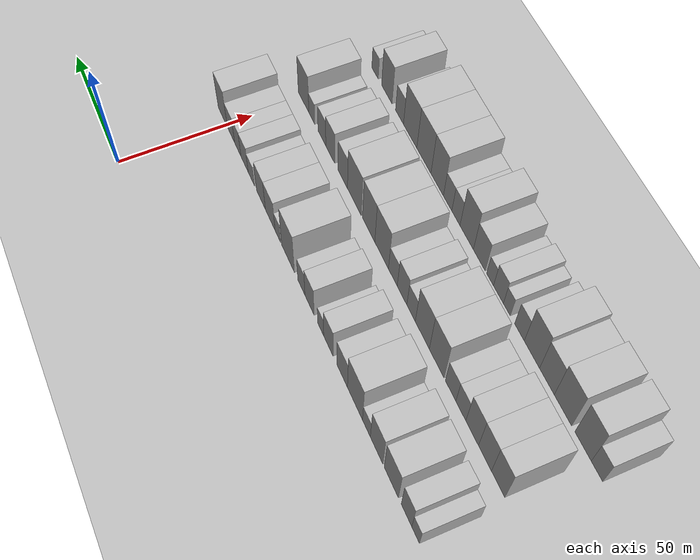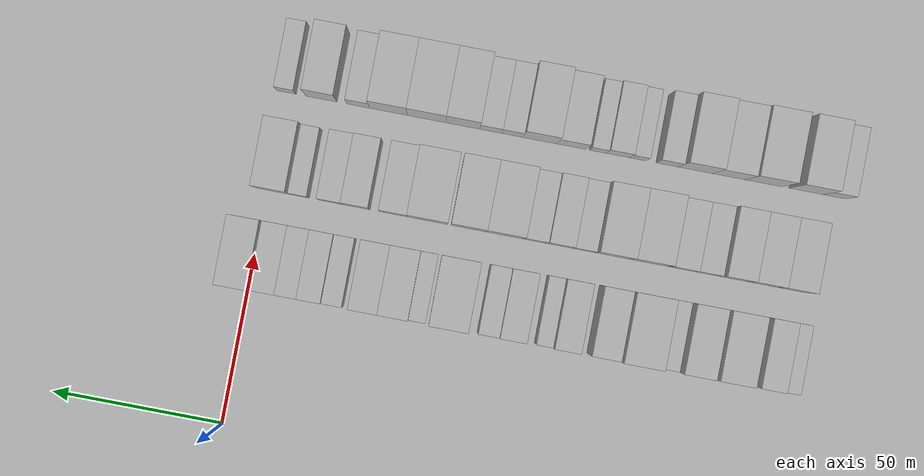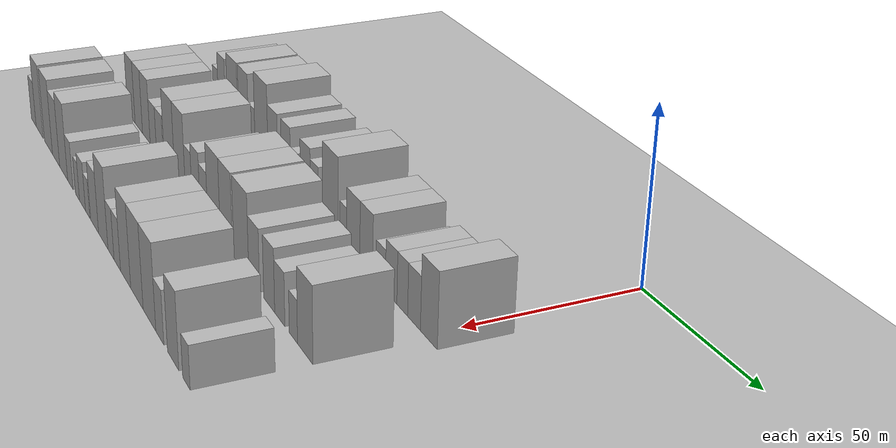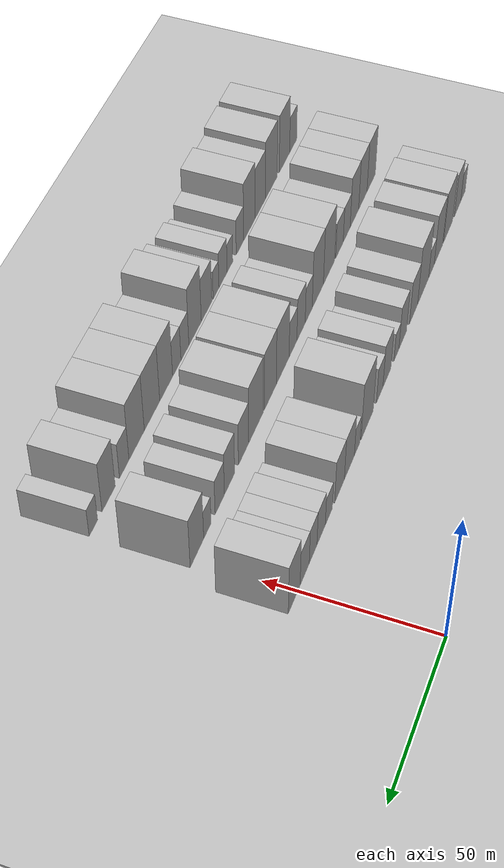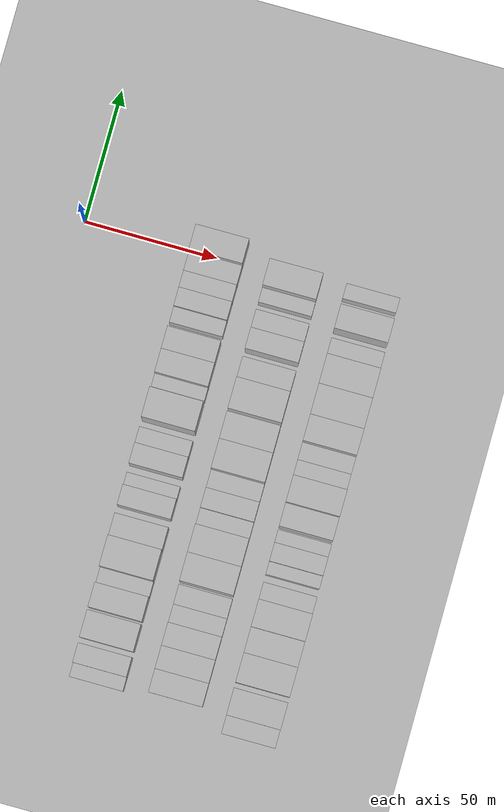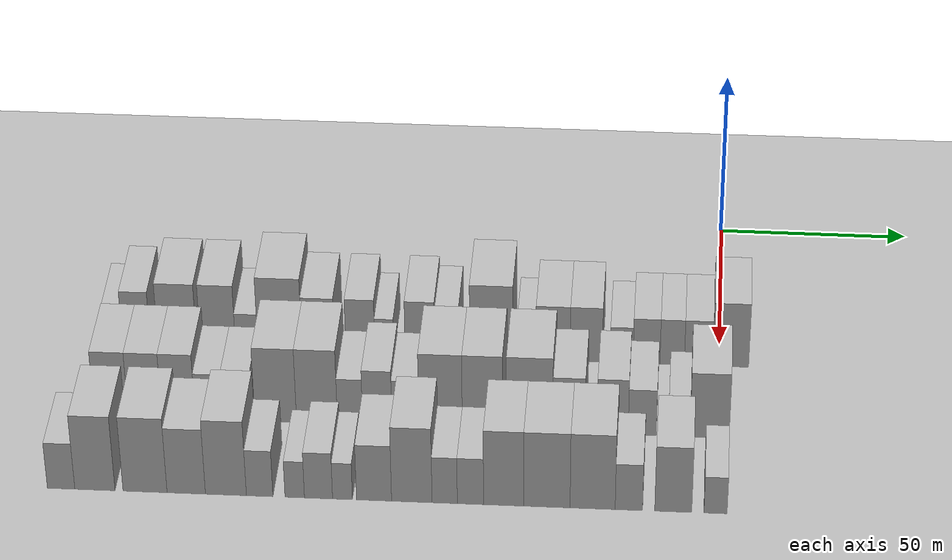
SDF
<sdf version="1.6">
 <world name="default">
  <include><name>ground_plane_1</name><uri>model://HANNAS_ground_plane</uri></include>
  <include>
   <name>ground_plane_2</name>
   <uri>model://HANNAS_ground_plane</uri>
   <pose>100 0 0  0 0 0</pose>
  </include>
  <model name="building_20">
   <static>1</static>
   <pose>50.0000 -158.1950 0 0.000000 0.000000 0.000000</pose>
   <link name="link">
    <pose>0 0 6.00 0 0 0</pose>
    <collision name="collision"><geometry><box><size>20.0000 5.2070 12.0000</size></box></geometry></collision>
    <visual name="visual">
     <cast_shadows>0</cast_shadows>
     <geometry><box><size>20.0000 5.2070 12.0000</size></box></geometry>
     <material>
      <script>
       <uri>model://HANNAS_wall/materials/scripts</uri>
       <uri>model://HANNAS_wall/materials/textures</uri>
       <name>vrc/HANNAS_wall</name>
      </script>
     </material>
    </visual>
   </link>
  </model>
  <model name="building_21">
   <static>1</static>
   <pose>50.0000 -151.9357 0 0.000000 0.000000 0.000000</pose>
   <link name="link">
    <pose>0 0 9.00 0 0 0</pose>
    <collision name="collision"><geometry><box><size>20.0000 7.3116 18.0000</size></box></geometry></collision>
    <visual name="visual">
     <cast_shadows>0</cast_shadows>
     <geometry><box><size>20.0000 7.3116 18.0000</size></box></geometry>
     <material>
      <script>
       <uri>model://HANNAS_wall/materials/scripts</uri>
       <uri>model://HANNAS_wall/materials/textures</uri>
       <name>vrc/HANNAS_wall</name>
      </script>
     </material>
    </visual>
   </link>
  </model>
  <model name="building_22">
   <static>1</static>
   <pose>50.0000 -141.1871 0 0.000000 0.000000 0.000000</pose>
   <link name="link">
    <pose>0 0 10.50 0 0 0</pose>
    <collision name="collision"><geometry><box><size>20.0000 10.1855 21.0000</size></box></geometry></collision>
    <visual name="visual">
     <cast_shadows>0</cast_shadows>
     <geometry><box><size>20.0000 10.1855 21.0000</size></box></geometry>
     <material>
      <script>
       <uri>model://HANNAS_wall/materials/scripts</uri>
       <uri>model://HANNAS_wall/materials/textures</uri>
       <name>vrc/HANNAS_wall</name>
      </script>
     </material>
    </visual>
   </link>
  </model>
  <model name="building_23">
   <static>1</static>
   <pose>50.0000 -130.5088 0 0.000000 0.000000 0.000000</pose>
   <link name="link">
    <pose>0 0 10.50 0 0 0</pose>
    <collision name="collision"><geometry><box><size>20.0000 9.1711 21.0000</size></box></geometry></collision>
    <visual name="visual">
     <cast_shadows>0</cast_shadows>
     <geometry><box><size>20.0000 9.1711 21.0000</size></box></geometry>
     <material>
      <script>
       <uri>model://HANNAS_wall/materials/scripts</uri>
       <uri>model://HANNAS_wall/materials/textures</uri>
       <name>vrc/HANNAS_wall</name>
      </script>
     </material>
    </visual>
   </link>
  </model>
  <model name="building_24">
   <static>1</static>
   <pose>50.0000 -122.9851 0 0.000000 0.000000 0.000000</pose>
   <link name="link">
    <pose>0 0 6.00 0 0 0</pose>
    <collision name="collision"><geometry><box><size>20.0000 5.8763 12.0000</size></box></geometry></collision>
    <visual name="visual">
     <cast_shadows>0</cast_shadows>
     <geometry><box><size>20.0000 5.8763 12.0000</size></box></geometry>
     <material>
      <script>
       <uri>model://HANNAS_wall/materials/scripts</uri>
       <uri>model://HANNAS_wall/materials/textures</uri>
       <name>vrc/HANNAS_wall</name>
      </script>
     </material>
    </visual>
   </link>
  </model>
  <model name="building_25">
   <static>1</static>
   <pose>50.0000 -114.2810 0 0.000000 0.000000 0.000000</pose>
   <link name="link">
    <pose>0 0 12.00 0 0 0</pose>
    <collision name="collision"><geometry><box><size>20.0000 11.5320 24.0000</size></box></geometry></collision>
    <visual name="visual">
     <cast_shadows>0</cast_shadows>
     <geometry><box><size>20.0000 11.5320 24.0000</size></box></geometry>
     <material>
      <script>
       <uri>model://HANNAS_wall/materials/scripts</uri>
       <uri>model://HANNAS_wall/materials/textures</uri>
       <name>vrc/HANNAS_wall</name>
      </script>
     </material>
    </visual>
   </link>
  </model>
  <model name="building_26">
   <static>1</static>
   <pose>50.0000 -104.2789 0 0.000000 0.000000 0.000000</pose>
   <link name="link">
    <pose>0 0 9.00 0 0 0</pose>
    <collision name="collision"><geometry><box><size>20.0000 8.4722 18.0000</size></box></geometry></collision>
    <visual name="visual">
     <cast_shadows>0</cast_shadows>
     <geometry><box><size>20.0000 8.4722 18.0000</size></box></geometry>
     <material>
      <script>
       <uri>model://HANNAS_wall/materials/scripts</uri>
       <uri>model://HANNAS_wall/materials/textures</uri>
       <name>vrc/HANNAS_wall</name>
      </script>
     </material>
    </visual>
   </link>
  </model>
  <model name="building_27">
   <static>1</static>
   <pose>50.0000 -93.2435 0 0.000000 0.000000 0.000000</pose>
   <link name="link">
    <pose>0 0 9.00 0 0 0</pose>
    <collision name="collision"><geometry><box><size>20.0000 7.5985 18.0000</size></box></geometry></collision>
    <visual name="visual">
     <cast_shadows>0</cast_shadows>
     <geometry><box><size>20.0000 7.5985 18.0000</size></box></geometry>
     <material>
      <script>
       <uri>model://HANNAS_wall/materials/scripts</uri>
       <uri>model://HANNAS_wall/materials/textures</uri>
       <name>vrc/HANNAS_wall</name>
      </script>
     </material>
    </visual>
   </link>
  </model>
  <model name="building_28">
   <static>1</static>
   <pose>50.0000 -86.9962 0 0.000000 0.000000 0.000000</pose>
   <link name="link">
    <pose>0 0 6.00 0 0 0</pose>
    <collision name="collision"><geometry><box><size>20.0000 4.8962 12.0000</size></box></geometry></collision>
    <visual name="visual">
     <cast_shadows>0</cast_shadows>
     <geometry><box><size>20.0000 4.8962 12.0000</size></box></geometry>
     <material>
      <script>
       <uri>model://HANNAS_wall/materials/scripts</uri>
       <uri>model://HANNAS_wall/materials/textures</uri>
       <name>vrc/HANNAS_wall</name>
      </script>
     </material>
    </visual>
   </link>
  </model>
  <model name="building_29">
   <static>1</static>
   <pose>50.0000 -77.6888 0 0.000000 0.000000 0.000000</pose>
   <link name="link">
    <pose>0 0 9.00 0 0 0</pose>
    <collision name="collision"><geometry><box><size>20.0000 7.7185 18.0000</size></box></geometry></collision>
    <visual name="visual">
     <cast_shadows>0</cast_shadows>
     <geometry><box><size>20.0000 7.7185 18.0000</size></box></geometry>
     <material>
      <script>
       <uri>model://HANNAS_wall/materials/scripts</uri>
       <uri>model://HANNAS_wall/materials/textures</uri>
       <name>vrc/HANNAS_wall</name>
      </script>
     </material>
    </visual>
   </link>
  </model>
  <model name="building_30">
   <static>1</static>
   <pose>50.0000 -70.7583 0 0.000000 0.000000 0.000000</pose>
   <link name="link">
    <pose>0 0 7.50 0 0 0</pose>
    <collision name="collision"><geometry><box><size>20.0000 6.1424 15.0000</size></box></geometry></collision>
    <visual name="visual">
     <cast_shadows>0</cast_shadows>
     <geometry><box><size>20.0000 6.1424 15.0000</size></box></geometry>
     <material>
      <script>
       <uri>model://HANNAS_wall/materials/scripts</uri>
       <uri>model://HANNAS_wall/materials/textures</uri>
       <name>vrc/HANNAS_wall</name>
      </script>
     </material>
    </visual>
   </link>
  </model>
  <model name="building_31">
   <static>1</static>
   <pose>50.0000 -59.0798 0 0.000000 0.000000 0.000000</pose>
   <link name="link">
    <pose>0 0 12.00 0 0 0</pose>
    <collision name="collision"><geometry><box><size>20.0000 11.2145 24.0000</size></box></geometry></collision>
    <visual name="visual">
     <cast_shadows>0</cast_shadows>
     <geometry><box><size>20.0000 11.2145 24.0000</size></box></geometry>
     <material>
      <script>
       <uri>model://HANNAS_wall/materials/scripts</uri>
       <uri>model://HANNAS_wall/materials/textures</uri>
       <name>vrc/HANNAS_wall</name>
      </script>
     </material>
    </visual>
   </link>
  </model>
  <model name="building_32">
   <static>1</static>
   <pose>50.0000 -49.9756 0 0.000000 0.000000 0.000000</pose>
   <link name="link">
    <pose>0 0 6.00 0 0 0</pose>
    <collision name="collision"><geometry><box><size>20.0000 4.9939 12.0000</size></box></geometry></collision>
    <visual name="visual">
     <cast_shadows>0</cast_shadows>
     <geometry><box><size>20.0000 4.9939 12.0000</size></box></geometry>
     <material>
      <script>
       <uri>model://HANNAS_wall/materials/scripts</uri>
       <uri>model://HANNAS_wall/materials/textures</uri>
       <name>vrc/HANNAS_wall</name>
      </script>
     </material>
    </visual>
   </link>
  </model>
  <model name="building_33">
   <static>1</static>
   <pose>50.0000 -43.0488 0 0.000000 0.000000 0.000000</pose>
   <link name="link">
    <pose>0 0 9.00 0 0 0</pose>
    <collision name="collision"><geometry><box><size>20.0000 8.8598 18.0000</size></box></geometry></collision>
    <visual name="visual">
     <cast_shadows>0</cast_shadows>
     <geometry><box><size>20.0000 8.8598 18.0000</size></box></geometry>
     <material>
      <script>
       <uri>model://HANNAS_wall/materials/scripts</uri>
       <uri>model://HANNAS_wall/materials/textures</uri>
       <name>vrc/HANNAS_wall</name>
      </script>
     </material>
    </visual>
   </link>
  </model>
  <model name="building_34">
   <static>1</static>
   <pose>50.0000 -34.4231 0 0.000000 0.000000 0.000000</pose>
   <link name="link">
    <pose>0 0 9.00 0 0 0</pose>
    <collision name="collision"><geometry><box><size>20.0000 8.3916 18.0000</size></box></geometry></collision>
    <visual name="visual">
     <cast_shadows>0</cast_shadows>
     <geometry><box><size>20.0000 8.3916 18.0000</size></box></geometry>
     <material>
      <script>
       <uri>model://HANNAS_wall/materials/scripts</uri>
       <uri>model://HANNAS_wall/materials/textures</uri>
       <name>vrc/HANNAS_wall</name>
      </script>
     </material>
    </visual>
   </link>
  </model>
  <model name="building_35">
   <static>1</static>
   <pose>50.0000 -25.2457 0 0.000000 0.000000 0.000000</pose>
   <link name="link">
    <pose>0 0 6.00 0 0 0</pose>
    <collision name="collision"><geometry><box><size>20.0000 5.9630 12.0000</size></box></geometry></collision>
    <visual name="visual">
     <cast_shadows>0</cast_shadows>
     <geometry><box><size>20.0000 5.9630 12.0000</size></box></geometry>
     <material>
      <script>
       <uri>model://HANNAS_wall/materials/scripts</uri>
       <uri>model://HANNAS_wall/materials/textures</uri>
       <name>vrc/HANNAS_wall</name>
      </script>
     </material>
    </visual>
   </link>
  </model>
  <model name="building_36">
   <static>1</static>
   <pose>50.0000 -18.7778 0 0.000000 0.000000 0.000000</pose>
   <link name="link">
    <pose>0 0 7.50 0 0 0</pose>
    <collision name="collision"><geometry><box><size>20.0000 6.9728 15.0000</size></box></geometry></collision>
    <visual name="visual">
     <cast_shadows>0</cast_shadows>
     <geometry><box><size>20.0000 6.9728 15.0000</size></box></geometry>
     <material>
      <script>
       <uri>model://HANNAS_wall/materials/scripts</uri>
       <uri>model://HANNAS_wall/materials/textures</uri>
       <name>vrc/HANNAS_wall</name>
      </script>
     </material>
    </visual>
   </link>
  </model>
  <model name="building_37">
   <static>1</static>
   <pose>50.0000 -12.1373 0 0.000000 0.000000 0.000000</pose>
   <link name="link">
    <pose>0 0 7.50 0 0 0</pose>
    <collision name="collision"><geometry><box><size>20.0000 6.3082 15.0000</size></box></geometry></collision>
    <visual name="visual">
     <cast_shadows>0</cast_shadows>
     <geometry><box><size>20.0000 6.3082 15.0000</size></box></geometry>
     <material>
      <script>
       <uri>model://HANNAS_wall/materials/scripts</uri>
       <uri>model://HANNAS_wall/materials/textures</uri>
       <name>vrc/HANNAS_wall</name>
      </script>
     </material>
    </visual>
   </link>
  </model>
  <model name="building_38">
   <static>1</static>
   <pose>50.0000 -5.3247 0 0.000000 0.000000 0.000000</pose>
   <link name="link">
    <pose>0 0 7.50 0 0 0</pose>
    <collision name="collision"><geometry><box><size>20.0000 7.3171 15.0000</size></box></geometry></collision>
    <visual name="visual">
     <cast_shadows>0</cast_shadows>
     <geometry><box><size>20.0000 7.3171 15.0000</size></box></geometry>
     <material>
      <script>
       <uri>model://HANNAS_wall/materials/scripts</uri>
       <uri>model://HANNAS_wall/materials/textures</uri>
       <name>vrc/HANNAS_wall</name>
      </script>
     </material>
    </visual>
   </link>
  </model>
  <model name="building_39">
   <static>1</static>
   <pose>50.0000 3.0005 0 0.000000 0.000000 0.000000</pose>
   <link name="link">
    <pose>0 0 10.50 0 0 0</pose>
    <collision name="collision"><geometry><box><size>20.0000 9.3334 21.0000</size></box></geometry></collision>
    <visual name="visual">
     <cast_shadows>0</cast_shadows>
     <geometry><box><size>20.0000 9.3334 21.0000</size></box></geometry>
     <material>
      <script>
       <uri>model://HANNAS_wall/materials/scripts</uri>
       <uri>model://HANNAS_wall/materials/textures</uri>
       <name>vrc/HANNAS_wall</name>
      </script>
     </material>
    </visual>
   </link>
  </model>
  <model name="building_94">
   <static>1</static>
   <pose>79.0000 -154.1680 0 0.000000 0.000000 0.000000</pose>
   <link name="link">
    <pose>0 0 10.50 0 0 0</pose>
    <collision name="collision"><geometry><box><size>20.0000 8.6888 21.0000</size></box></geometry></collision>
    <visual name="visual">
     <cast_shadows>0</cast_shadows>
     <geometry><box><size>20.0000 8.6888 21.0000</size></box></geometry>
     <material>
      <script>
       <uri>model://HANNAS_wall/materials/scripts</uri>
       <uri>model://HANNAS_wall/materials/textures</uri>
       <name>vrc/HANNAS_wall</name>
      </script>
     </material>
    </visual>
   </link>
  </model>
  <model name="building_95">
   <static>1</static>
   <pose>79.0000 -145.5344 0 0.000000 0.000000 0.000000</pose>
   <link name="link">
    <pose>0 0 10.50 0 0 0</pose>
    <collision name="collision"><geometry><box><size>20.0000 8.5784 21.0000</size></box></geometry></collision>
    <visual name="visual">
     <cast_shadows>0</cast_shadows>
     <geometry><box><size>20.0000 8.5784 21.0000</size></box></geometry>
     <material>
      <script>
       <uri>model://HANNAS_wall/materials/scripts</uri>
       <uri>model://HANNAS_wall/materials/textures</uri>
       <name>vrc/HANNAS_wall</name>
      </script>
     </material>
    </visual>
   </link>
  </model>
  <model name="building_96">
   <static>1</static>
   <pose>79.0000 -136.9657 0 0.000000 0.000000 0.000000</pose>
   <link name="link">
    <pose>0 0 10.50 0 0 0</pose>
    <collision name="collision"><geometry><box><size>20.0000 8.5591 21.0000</size></box></geometry></collision>
    <visual name="visual">
     <cast_shadows>0</cast_shadows>
     <geometry><box><size>20.0000 8.5591 21.0000</size></box></geometry>
     <material>
      <script>
       <uri>model://HANNAS_wall/materials/scripts</uri>
       <uri>model://HANNAS_wall/materials/textures</uri>
       <name>vrc/HANNAS_wall</name>
      </script>
     </material>
    </visual>
   </link>
  </model>
  <model name="building_97">
   <static>1</static>
   <pose>79.0000 -129.2474 0 0.000000 0.000000 0.000000</pose>
   <link name="link">
    <pose>0 0 7.50 0 0 0</pose>
    <collision name="collision"><geometry><box><size>20.0000 6.8774 15.0000</size></box></geometry></collision>
    <visual name="visual">
     <cast_shadows>0</cast_shadows>
     <geometry><box><size>20.0000 6.8774 15.0000</size></box></geometry>
     <material>
      <script>
       <uri>model://HANNAS_wall/materials/scripts</uri>
       <uri>model://HANNAS_wall/materials/textures</uri>
       <name>vrc/HANNAS_wall</name>
      </script>
     </material>
    </visual>
   </link>
  </model>
  <model name="building_98">
   <static>1</static>
   <pose>79.0000 -122.1143 0 0.000000 0.000000 0.000000</pose>
   <link name="link">
    <pose>0 0 7.50 0 0 0</pose>
    <collision name="collision"><geometry><box><size>20.0000 7.3887 15.0000</size></box></geometry></collision>
    <visual name="visual">
     <cast_shadows>0</cast_shadows>
     <geometry><box><size>20.0000 7.3887 15.0000</size></box></geometry>
     <material>
      <script>
       <uri>model://HANNAS_wall/materials/scripts</uri>
       <uri>model://HANNAS_wall/materials/textures</uri>
       <name>vrc/HANNAS_wall</name>
      </script>
     </material>
    </visual>
   </link>
  </model>
  <model name="building_99">
   <static>1</static>
   <pose>79.0000 -112.1099 0 0.000000 0.000000 0.000000</pose>
   <link name="link">
    <pose>0 0 12.00 0 0 0</pose>
    <collision name="collision"><geometry><box><size>20.0000 10.6200 24.0000</size></box></geometry></collision>
    <visual name="visual">
     <cast_shadows>0</cast_shadows>
     <geometry><box><size>20.0000 10.6200 24.0000</size></box></geometry>
     <material>
      <script>
       <uri>model://HANNAS_wall/materials/scripts</uri>
       <uri>model://HANNAS_wall/materials/textures</uri>
       <name>vrc/HANNAS_wall</name>
      </script>
     </material>
    </visual>
   </link>
  </model>
  <model name="building_100">
   <static>1</static>
   <pose>79.0000 -101.5886 0 0.000000 0.000000 0.000000</pose>
   <link name="link">
    <pose>0 0 12.00 0 0 0</pose>
    <collision name="collision"><geometry><box><size>20.0000 10.4227 24.0000</size></box></geometry></collision>
    <visual name="visual">
     <cast_shadows>0</cast_shadows>
     <geometry><box><size>20.0000 10.4227 24.0000</size></box></geometry>
     <material>
      <script>
       <uri>model://HANNAS_wall/materials/scripts</uri>
       <uri>model://HANNAS_wall/materials/textures</uri>
       <name>vrc/HANNAS_wall</name>
      </script>
     </material>
    </visual>
   </link>
  </model>
  <model name="building_101">
   <static>1</static>
   <pose>79.0000 -93.1747 0 0.000000 0.000000 0.000000</pose>
   <link name="link">
    <pose>0 0 7.50 0 0 0</pose>
    <collision name="collision"><geometry><box><size>20.0000 6.4050 15.0000</size></box></geometry></collision>
    <visual name="visual">
     <cast_shadows>0</cast_shadows>
     <geometry><box><size>20.0000 6.4050 15.0000</size></box></geometry>
     <material>
      <script>
       <uri>model://HANNAS_wall/materials/scripts</uri>
       <uri>model://HANNAS_wall/materials/textures</uri>
       <name>vrc/HANNAS_wall</name>
      </script>
     </material>
    </visual>
   </link>
  </model>
  <model name="building_102">
   <static>1</static>
   <pose>79.0000 -86.2484 0 0.000000 0.000000 0.000000</pose>
   <link name="link">
    <pose>0 0 9.00 0 0 0</pose>
    <collision name="collision"><geometry><box><size>20.0000 7.4476 18.0000</size></box></geometry></collision>
    <visual name="visual">
     <cast_shadows>0</cast_shadows>
     <geometry><box><size>20.0000 7.4476 18.0000</size></box></geometry>
     <material>
      <script>
       <uri>model://HANNAS_wall/materials/scripts</uri>
       <uri>model://HANNAS_wall/materials/textures</uri>
       <name>vrc/HANNAS_wall</name>
      </script>
     </material>
    </visual>
   </link>
  </model>
  <model name="building_103">
   <static>1</static>
   <pose>79.0000 -79.0832 0 0.000000 0.000000 0.000000</pose>
   <link name="link">
    <pose>0 0 7.50 0 0 0</pose>
    <collision name="collision"><geometry><box><size>20.0000 6.8829 15.0000</size></box></geometry></collision>
    <visual name="visual">
     <cast_shadows>0</cast_shadows>
     <geometry><box><size>20.0000 6.8829 15.0000</size></box></geometry>
     <material>
      <script>
       <uri>model://HANNAS_wall/materials/scripts</uri>
       <uri>model://HANNAS_wall/materials/textures</uri>
       <name>vrc/HANNAS_wall</name>
      </script>
     </material>
    </visual>
   </link>
  </model>
  <model name="building_104">
   <static>1</static>
   <pose>79.0000 -70.1405 0 0.000000 0.000000 0.000000</pose>
   <link name="link">
    <pose>0 0 12.00 0 0 0</pose>
    <collision name="collision"><geometry><box><size>20.0000 11.0026 24.0000</size></box></geometry></collision>
    <visual name="visual">
     <cast_shadows>0</cast_shadows>
     <geometry><box><size>20.0000 11.0026 24.0000</size></box></geometry>
     <material>
      <script>
       <uri>model://HANNAS_wall/materials/scripts</uri>
       <uri>model://HANNAS_wall/materials/textures</uri>
       <name>vrc/HANNAS_wall</name>
      </script>
     </material>
    </visual>
   </link>
  </model>
  <model name="building_105">
   <static>1</static>
   <pose>79.0000 -59.5394 0 0.000000 0.000000 0.000000</pose>
   <link name="link">
    <pose>0 0 12.00 0 0 0</pose>
    <collision name="collision"><geometry><box><size>20.0000 10.1994 24.0000</size></box></geometry></collision>
    <visual name="visual">
     <cast_shadows>0</cast_shadows>
     <geometry><box><size>20.0000 10.1994 24.0000</size></box></geometry>
     <material>
      <script>
       <uri>model://HANNAS_wall/materials/scripts</uri>
       <uri>model://HANNAS_wall/materials/textures</uri>
       <name>vrc/HANNAS_wall</name>
      </script>
     </material>
    </visual>
   </link>
  </model>
  <model name="building_106">
   <static>1</static>
   <pose>79.0000 -47.5764 0 0.000000 0.000000 0.000000</pose>
   <link name="link">
    <pose>0 0 12.00 0 0 0</pose>
    <collision name="collision"><geometry><box><size>20.0000 11.7266 24.0000</size></box></geometry></collision>
    <visual name="visual">
     <cast_shadows>0</cast_shadows>
     <geometry><box><size>20.0000 11.7266 24.0000</size></box></geometry>
     <material>
      <script>
       <uri>model://HANNAS_wall/materials/scripts</uri>
       <uri>model://HANNAS_wall/materials/textures</uri>
       <name>vrc/HANNAS_wall</name>
      </script>
     </material>
    </visual>
   </link>
  </model>
  <model name="building_107">
   <static>1</static>
   <pose>79.0000 -37.6157 0 0.000000 0.000000 0.000000</pose>
   <link name="link">
    <pose>0 0 9.00 0 0 0</pose>
    <collision name="collision"><geometry><box><size>20.0000 8.1949 18.0000</size></box></geometry></collision>
    <visual name="visual">
     <cast_shadows>0</cast_shadows>
     <geometry><box><size>20.0000 8.1949 18.0000</size></box></geometry>
     <material>
      <script>
       <uri>model://HANNAS_wall/materials/scripts</uri>
       <uri>model://HANNAS_wall/materials/textures</uri>
       <name>vrc/HANNAS_wall</name>
      </script>
     </material>
    </visual>
   </link>
  </model>
  <model name="building_108">
   <static>1</static>
   <pose>79.0000 -26.5701 0 0.000000 0.000000 0.000000</pose>
   <link name="link">
    <pose>0 0 9.00 0 0 0</pose>
    <collision name="collision"><geometry><box><size>20.0000 7.8962 18.0000</size></box></geometry></collision>
    <visual name="visual">
     <cast_shadows>0</cast_shadows>
     <geometry><box><size>20.0000 7.8962 18.0000</size></box></geometry>
     <material>
      <script>
       <uri>model://HANNAS_wall/materials/scripts</uri>
       <uri>model://HANNAS_wall/materials/textures</uri>
       <name>vrc/HANNAS_wall</name>
      </script>
     </material>
    </visual>
   </link>
  </model>
  <model name="building_109">
   <static>1</static>
   <pose>79.0000 -19.0780 0 0.000000 0.000000 0.000000</pose>
   <link name="link">
    <pose>0 0 7.50 0 0 0</pose>
    <collision name="collision"><geometry><box><size>20.0000 7.0879 15.0000</size></box></geometry></collision>
    <visual name="visual">
     <cast_shadows>0</cast_shadows>
     <geometry><box><size>20.0000 7.0879 15.0000</size></box></geometry>
     <material>
      <script>
       <uri>model://HANNAS_wall/materials/scripts</uri>
       <uri>model://HANNAS_wall/materials/textures</uri>
       <name>vrc/HANNAS_wall</name>
      </script>
     </material>
    </visual>
   </link>
  </model>
  <model name="building_110">
   <static>1</static>
   <pose>79.0000 -9.7975 0 0.000000 0.000000 0.000000</pose>
   <link name="link">
    <pose>0 0 6.00 0 0 0</pose>
    <collision name="collision"><geometry><box><size>20.0000 5.4732 12.0000</size></box></geometry></collision>
    <visual name="visual">
     <cast_shadows>0</cast_shadows>
     <geometry><box><size>20.0000 5.4732 12.0000</size></box></geometry>
     <material>
      <script>
       <uri>model://HANNAS_wall/materials/scripts</uri>
       <uri>model://HANNAS_wall/materials/textures</uri>
       <name>vrc/HANNAS_wall</name>
      </script>
     </material>
    </visual>
   </link>
  </model>
  <model name="building_111">
   <static>1</static>
   <pose>79.0000 -2.1053 0 0.000000 0.000000 0.000000</pose>
   <link name="link">
    <pose>0 0 10.50 0 0 0</pose>
    <collision name="collision"><geometry><box><size>20.0000 9.9112 21.0000</size></box></geometry></collision>
    <visual name="visual">
     <cast_shadows>0</cast_shadows>
     <geometry><box><size>20.0000 9.9112 21.0000</size></box></geometry>
     <material>
      <script>
       <uri>model://HANNAS_wall/materials/scripts</uri>
       <uri>model://HANNAS_wall/materials/textures</uri>
       <name>vrc/HANNAS_wall</name>
      </script>
     </material>
    </visual>
   </link>
  </model>
  <model name="building_172">
   <static>1</static>
   <pose>108.0000 -162.3005 0 0.000000 0.000000 0.000000</pose>
   <link name="link">
    <pose>0 0 7.50 0 0 0</pose>
    <collision name="collision"><geometry><box><size>20.0000 6.8486 15.0000</size></box></geometry></collision>
    <visual name="visual">
     <cast_shadows>0</cast_shadows>
     <geometry><box><size>20.0000 6.8486 15.0000</size></box></geometry>
     <material>
      <script>
       <uri>model://HANNAS_wall/materials/scripts</uri>
       <uri>model://HANNAS_wall/materials/textures</uri>
       <name>vrc/HANNAS_wall</name>
      </script>
     </material>
    </visual>
   </link>
  </model>
  <model name="building_173">
   <static>1</static>
   <pose>108.0000 -153.8588 0 0.000000 0.000000 0.000000</pose>
   <link name="link">
    <pose>0 0 12.00 0 0 0</pose>
    <collision name="collision"><geometry><box><size>20.0000 10.0349 24.0000</size></box></geometry></collision>
    <visual name="visual">
     <cast_shadows>0</cast_shadows>
     <geometry><box><size>20.0000 10.0349 24.0000</size></box></geometry>
     <material>
      <script>
       <uri>model://HANNAS_wall/materials/scripts</uri>
       <uri>model://HANNAS_wall/materials/textures</uri>
       <name>vrc/HANNAS_wall</name>
      </script>
     </material>
    </visual>
   </link>
  </model>
  <model name="building_174">
   <static>1</static>
   <pose>108.0000 -141.3608 0 0.000000 0.000000 0.000000</pose>
   <link name="link">
    <pose>0 0 12.00 0 0 0</pose>
    <collision name="collision"><geometry><box><size>20.0000 10.9611 24.0000</size></box></geometry></collision>
    <visual name="visual">
     <cast_shadows>0</cast_shadows>
     <geometry><box><size>20.0000 10.9611 24.0000</size></box></geometry>
     <material>
      <script>
       <uri>model://HANNAS_wall/materials/scripts</uri>
       <uri>model://HANNAS_wall/materials/textures</uri>
       <name>vrc/HANNAS_wall</name>
      </script>
     </material>
    </visual>
   </link>
  </model>
  <model name="building_175">
   <static>1</static>
   <pose>108.0000 -131.1015 0 0.000000 0.000000 0.000000</pose>
   <link name="link">
    <pose>0 0 10.50 0 0 0</pose>
    <collision name="collision"><geometry><box><size>20.0000 9.5574 21.0000</size></box></geometry></collision>
    <visual name="visual">
     <cast_shadows>0</cast_shadows>
     <geometry><box><size>20.0000 9.5574 21.0000</size></box></geometry>
     <material>
      <script>
       <uri>model://HANNAS_wall/materials/scripts</uri>
       <uri>model://HANNAS_wall/materials/textures</uri>
       <name>vrc/HANNAS_wall</name>
      </script>
     </material>
    </visual>
   </link>
  </model>
  <model name="building_176">
   <static>1</static>
   <pose>108.0000 -121.2275 0 0.000000 0.000000 0.000000</pose>
   <link name="link">
    <pose>0 0 12.00 0 0 0</pose>
    <collision name="collision"><geometry><box><size>20.0000 10.1905 24.0000</size></box></geometry></collision>
    <visual name="visual">
     <cast_shadows>0</cast_shadows>
     <geometry><box><size>20.0000 10.1905 24.0000</size></box></geometry>
     <material>
      <script>
       <uri>model://HANNAS_wall/materials/scripts</uri>
       <uri>model://HANNAS_wall/materials/textures</uri>
       <name>vrc/HANNAS_wall</name>
      </script>
     </material>
    </visual>
   </link>
  </model>
  <model name="building_177">
   <static>1</static>
   <pose>108.0000 -112.8387 0 0.000000 0.000000 0.000000</pose>
   <link name="link">
    <pose>0 0 7.50 0 0 0</pose>
    <collision name="collision"><geometry><box><size>20.0000 6.5871 15.0000</size></box></geometry></collision>
    <visual name="visual">
     <cast_shadows>0</cast_shadows>
     <geometry><box><size>20.0000 6.5871 15.0000</size></box></geometry>
     <material>
      <script>
       <uri>model://HANNAS_wall/materials/scripts</uri>
       <uri>model://HANNAS_wall/materials/textures</uri>
       <name>vrc/HANNAS_wall</name>
      </script>
     </material>
    </visual>
   </link>
  </model>
  <model name="building_178">
   <static>1</static>
   <pose>108.0000 -104.1316 0 0.000000 0.000000 0.000000</pose>
   <link name="link">
    <pose>0 0 6.00 0 0 0</pose>
    <collision name="collision"><geometry><box><size>20.0000 4.8270 12.0000</size></box></geometry></collision>
    <visual name="visual">
     <cast_shadows>0</cast_shadows>
     <geometry><box><size>20.0000 4.8270 12.0000</size></box></geometry>
     <material>
      <script>
       <uri>model://HANNAS_wall/materials/scripts</uri>
       <uri>model://HANNAS_wall/materials/textures</uri>
       <name>vrc/HANNAS_wall</name>
      </script>
     </material>
    </visual>
   </link>
  </model>
  <model name="building_179">
   <static>1</static>
   <pose>108.0000 -98.2313 0 0.000000 0.000000 0.000000</pose>
   <link name="link">
    <pose>0 0 7.50 0 0 0</pose>
    <collision name="collision"><geometry><box><size>20.0000 6.9738 15.0000</size></box></geometry></collision>
    <visual name="visual">
     <cast_shadows>0</cast_shadows>
     <geometry><box><size>20.0000 6.9738 15.0000</size></box></geometry>
     <material>
      <script>
       <uri>model://HANNAS_wall/materials/scripts</uri>
       <uri>model://HANNAS_wall/materials/textures</uri>
       <name>vrc/HANNAS_wall</name>
      </script>
     </material>
    </visual>
   </link>
  </model>
  <model name="building_180">
   <static>1</static>
   <pose>108.0000 -92.2784 0 0.000000 0.000000 0.000000</pose>
   <link name="link">
    <pose>0 0 6.00 0 0 0</pose>
    <collision name="collision"><geometry><box><size>20.0000 4.9320 12.0000</size></box></geometry></collision>
    <visual name="visual">
     <cast_shadows>0</cast_shadows>
     <geometry><box><size>20.0000 4.9320 12.0000</size></box></geometry>
     <material>
      <script>
       <uri>model://HANNAS_wall/materials/scripts</uri>
       <uri>model://HANNAS_wall/materials/textures</uri>
       <name>vrc/HANNAS_wall</name>
      </script>
     </material>
    </visual>
   </link>
  </model>
  <model name="building_181">
   <static>1</static>
   <pose>108.0000 -84.4670 0 0.000000 0.000000 0.000000</pose>
   <link name="link">
    <pose>0 0 9.00 0 0 0</pose>
    <collision name="collision"><geometry><box><size>20.0000 8.6908 18.0000</size></box></geometry></collision>
    <visual name="visual">
     <cast_shadows>0</cast_shadows>
     <geometry><box><size>20.0000 8.6908 18.0000</size></box></geometry>
     <material>
      <script>
       <uri>model://HANNAS_wall/materials/scripts</uri>
       <uri>model://HANNAS_wall/materials/textures</uri>
       <name>vrc/HANNAS_wall</name>
      </script>
     </material>
    </visual>
   </link>
  </model>
  <model name="building_182">
   <static>1</static>
   <pose>108.0000 -75.1125 0 0.000000 0.000000 0.000000</pose>
   <link name="link">
    <pose>0 0 12.00 0 0 0</pose>
    <collision name="collision"><geometry><box><size>20.0000 10.0182 24.0000</size></box></geometry></collision>
    <visual name="visual">
     <cast_shadows>0</cast_shadows>
     <geometry><box><size>20.0000 10.0182 24.0000</size></box></geometry>
     <material>
      <script>
       <uri>model://HANNAS_wall/materials/scripts</uri>
       <uri>model://HANNAS_wall/materials/textures</uri>
       <name>vrc/HANNAS_wall</name>
      </script>
     </material>
    </visual>
   </link>
  </model>
  <model name="building_183">
   <static>1</static>
   <pose>108.0000 -66.9826 0 0.000000 0.000000 0.000000</pose>
   <link name="link">
    <pose>0 0 7.50 0 0 0</pose>
    <collision name="collision"><geometry><box><size>20.0000 6.2416 15.0000</size></box></geometry></collision>
    <visual name="visual">
     <cast_shadows>0</cast_shadows>
     <geometry><box><size>20.0000 6.2416 15.0000</size></box></geometry>
     <material>
      <script>
       <uri>model://HANNAS_wall/materials/scripts</uri>
       <uri>model://HANNAS_wall/materials/textures</uri>
       <name>vrc/HANNAS_wall</name>
      </script>
     </material>
    </visual>
   </link>
  </model>
  <model name="building_184">
   <static>1</static>
   <pose>108.0000 -60.6152 0 0.000000 0.000000 0.000000</pose>
   <link name="link">
    <pose>0 0 7.50 0 0 0</pose>
    <collision name="collision"><geometry><box><size>20.0000 6.4931 15.0000</size></box></geometry></collision>
    <visual name="visual">
     <cast_shadows>0</cast_shadows>
     <geometry><box><size>20.0000 6.4931 15.0000</size></box></geometry>
     <material>
      <script>
       <uri>model://HANNAS_wall/materials/scripts</uri>
       <uri>model://HANNAS_wall/materials/textures</uri>
       <name>vrc/HANNAS_wall</name>
      </script>
     </material>
    </visual>
   </link>
  </model>
  <model name="building_185">
   <static>1</static>
   <pose>108.0000 -52.4292 0 0.000000 0.000000 0.000000</pose>
   <link name="link">
    <pose>0 0 12.00 0 0 0</pose>
    <collision name="collision"><geometry><box><size>20.0000 9.8790 24.0000</size></box></geometry></collision>
    <visual name="visual">
     <cast_shadows>0</cast_shadows>
     <geometry><box><size>20.0000 9.8790 24.0000</size></box></geometry>
     <material>
      <script>
       <uri>model://HANNAS_wall/materials/scripts</uri>
       <uri>model://HANNAS_wall/materials/textures</uri>
       <name>vrc/HANNAS_wall</name>
      </script>
     </material>
    </visual>
   </link>
  </model>
  <model name="building_186">
   <static>1</static>
   <pose>108.0000 -41.7598 0 0.000000 0.000000 0.000000</pose>
   <link name="link">
    <pose>0 0 12.00 0 0 0</pose>
    <collision name="collision"><geometry><box><size>20.0000 11.4597 24.0000</size></box></geometry></collision>
    <visual name="visual">
     <cast_shadows>0</cast_shadows>
     <geometry><box><size>20.0000 11.4597 24.0000</size></box></geometry>
     <material>
      <script>
       <uri>model://HANNAS_wall/materials/scripts</uri>
       <uri>model://HANNAS_wall/materials/textures</uri>
       <name>vrc/HANNAS_wall</name>
      </script>
     </material>
    </visual>
   </link>
  </model>
  <model name="building_187">
   <static>1</static>
   <pose>108.0000 -30.4761 0 0.000000 0.000000 0.000000</pose>
   <link name="link">
    <pose>0 0 12.00 0 0 0</pose>
    <collision name="collision"><geometry><box><size>20.0000 11.1079 24.0000</size></box></geometry></collision>
    <visual name="visual">
     <cast_shadows>0</cast_shadows>
     <geometry><box><size>20.0000 11.1079 24.0000</size></box></geometry>
     <material>
      <script>
       <uri>model://HANNAS_wall/materials/scripts</uri>
       <uri>model://HANNAS_wall/materials/textures</uri>
       <name>vrc/HANNAS_wall</name>
      </script>
     </material>
    </visual>
   </link>
  </model>
  <model name="building_188">
   <static>1</static>
   <pose>108.0000 -21.5544 0 0.000000 0.000000 0.000000</pose>
   <link name="link">
    <pose>0 0 7.50 0 0 0</pose>
    <collision name="collision"><geometry><box><size>20.0000 6.7353 15.0000</size></box></geometry></collision>
    <visual name="visual">
     <cast_shadows>0</cast_shadows>
     <geometry><box><size>20.0000 6.7353 15.0000</size></box></geometry>
     <material>
      <script>
       <uri>model://HANNAS_wall/materials/scripts</uri>
       <uri>model://HANNAS_wall/materials/textures</uri>
       <name>vrc/HANNAS_wall</name>
      </script>
     </material>
    </visual>
   </link>
  </model>
  <model name="building_189">
   <static>1</static>
   <pose>108.0000 -10.6394 0 0.000000 0.000000 0.000000</pose>
   <link name="link">
    <pose>0 0 10.50 0 0 0</pose>
    <collision name="collision"><geometry><box><size>20.0000 9.0947 21.0000</size></box></geometry></collision>
    <visual name="visual">
     <cast_shadows>0</cast_shadows>
     <geometry><box><size>20.0000 9.0947 21.0000</size></box></geometry>
     <material>
      <script>
       <uri>model://HANNAS_wall/materials/scripts</uri>
       <uri>model://HANNAS_wall/materials/textures</uri>
       <name>vrc/HANNAS_wall</name>
      </script>
     </material>
    </visual>
   </link>
  </model>
  <model name="building_190">
   <static>1</static>
   <pose>108.0000 -0.2509 0 0.000000 0.000000 0.000000</pose>
   <link name="link">
    <pose>0 0 6.00 0 0 0</pose>
    <collision name="collision"><geometry><box><size>20.0000 5.6823 12.0000</size></box></geometry></collision>
    <visual name="visual">
     <cast_shadows>0</cast_shadows>
     <geometry><box><size>20.0000 5.6823 12.0000</size></box></geometry>
     <material>
      <script>
       <uri>model://HANNAS_wall/materials/scripts</uri>
       <uri>model://HANNAS_wall/materials/textures</uri>
       <name>vrc/HANNAS_wall</name>
      </script>
     </material>
    </visual>
   </link>
  </model>
 </world>
</sdf>
